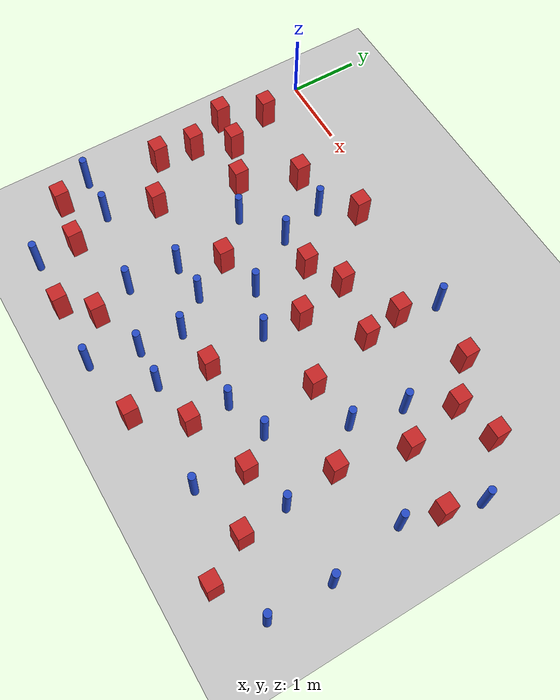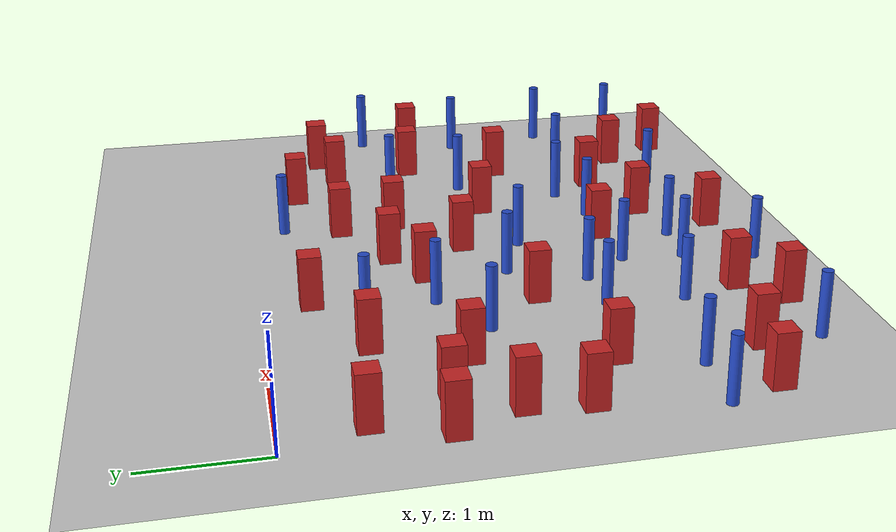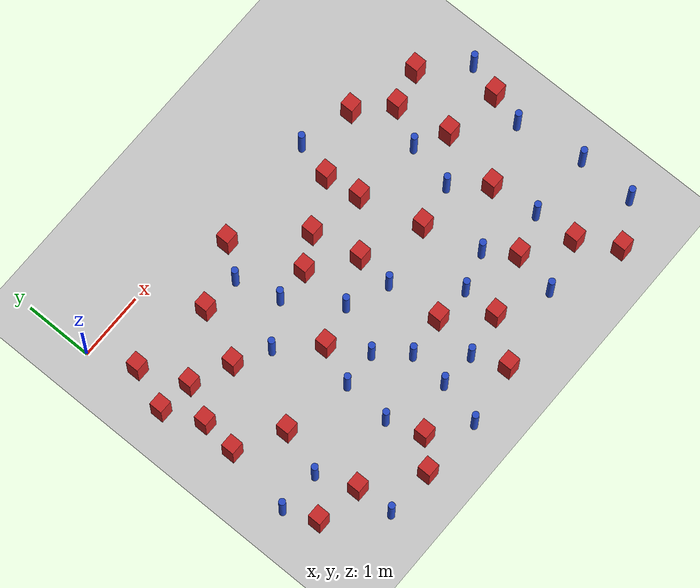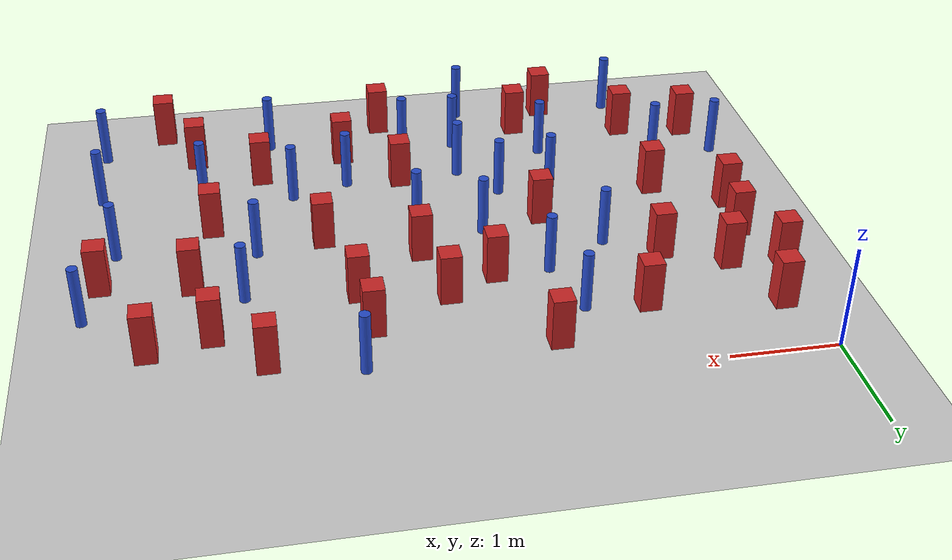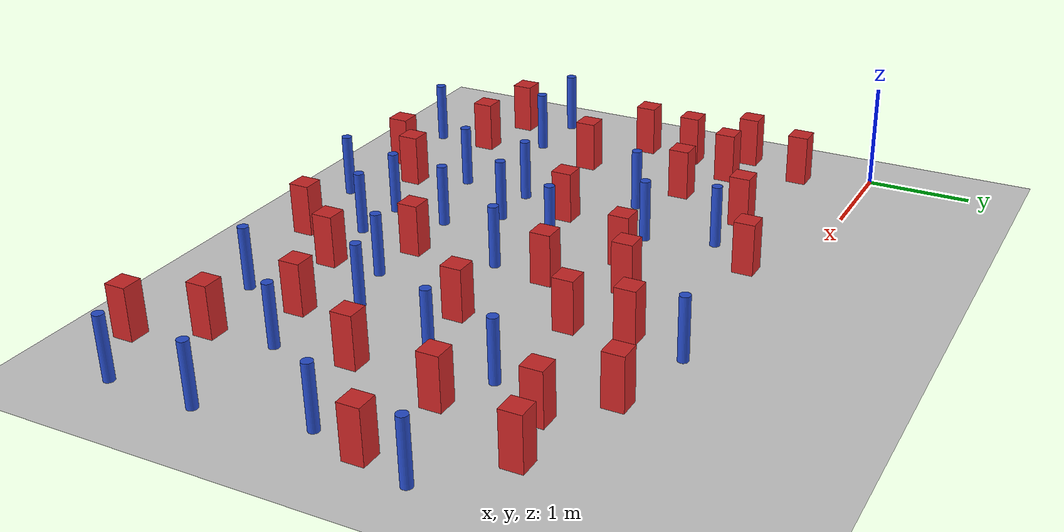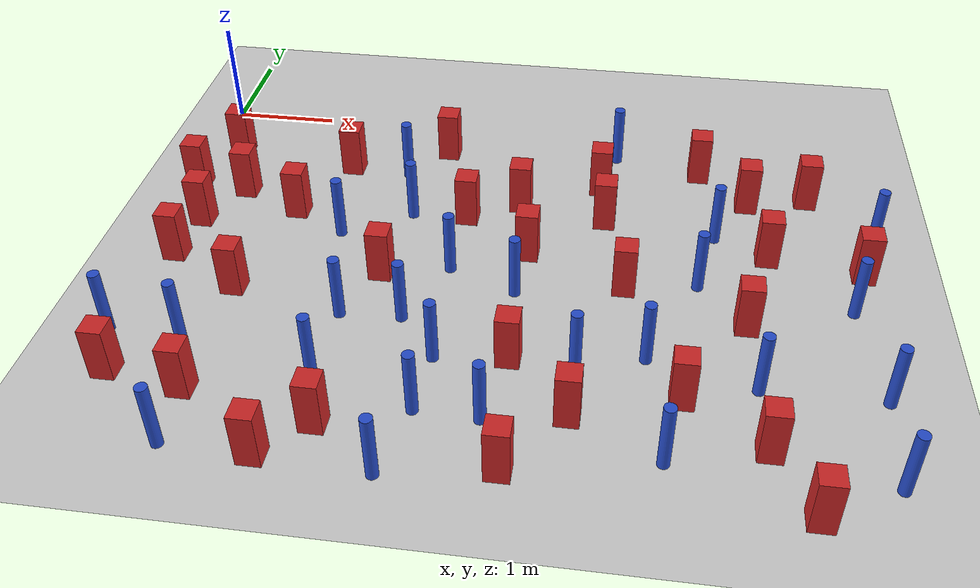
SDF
<sdf version="1.6">
 <world name="default">
  <model name="ground_plane">
   <static>1</static>
   <link name="link">
    <collision name="collision">
     <geometry><plane><normal>0 0 1</normal><size>100 100</size></plane></geometry>
     <surface><friction><ode><mu>100</mu><mu2>50</mu2></ode></friction></surface>
    </collision>
    <visual name="visual">
     <cast_shadows>0</cast_shadows>
     <geometry><plane><normal>0 0 1</normal><size>100 100</size></plane></geometry>
     <material>
      <ambient>1.0 1.0 1.0 1.0</ambient>
      <diffuse>0.8 0.8 0.8 1.0</diffuse>
      <specular>0.01 0.01 0.01 1.000000</specular>
     </material>
    </visual>
   </link>
  </model>
  <model name="pole_obstacle0">
   <static>true</static>
   <pose>3.24254973709 -4.00526755006 7.38925637345e-09 -8.47170692799e-08 1.24976764995e-08 -1.74513093021e-07</pose>
   <link name="link">
    <pose>0 0 0.3 0 -0 0</pose>
    <inertial>
     <mass>1</mass>
     <inertia><ixx>0.145833</ixx><ixy>0</ixy><ixz>0</ixz><iyy>0.145833</iyy><iyz>0</iyz><izz>0.125</izz></inertia>
    </inertial>
    <collision name="collision">
     <geometry><cylinder><radius>0.05</radius><length>.6</length></cylinder></geometry>
    </collision>
    <visual name="visual">
     <geometry><cylinder><radius>0.05</radius><length>.6</length></cylinder></geometry>
     <material>
      <script><name>Gazebo/Blue</name><uri>file://media/materials/scripts/gazebo.material</uri></script>
     </material>
    </visual>
   </link>
  </model>
  <model name="square_post_obstacle6">
   <static>true</static>
   <pose>2.73595648026 -1.51727002082 1.91545236811e-07 -7.35059704564e-06 1.12565212e-07 2.39332434364e-05</pose>
   <link name="link">
    <pose>0 0 0.25 0 -0 0</pose>
    <inertial>
     <mass>100</mass>
     <inertia>
      <ixx>0.166667</ixx>
      <ixy>0</ixy>
      <ixz>0</ixz>
      <iyy>0.166667</iyy>
      <iyz>0</iyz>
      <izz>0.166667</izz>
     </inertia>
    </inertial>
    <collision name="collision"><geometry><box><size>.2 .2 .5</size></box></geometry></collision>
    <visual name="visual">
     <geometry><box><size>.2 .2 .5</size></box></geometry>
     <material>
      <script><name>Gazebo/Red</name><uri>file://media/materials/scripts/gazebo.material</uri></script>
     </material>
    </visual>
   </link>
  </model>
  <model name="square_post_obstacle8">
   <static>true</static>
   <pose>0.0272128510297 -1.29698474354 1.91545236811e-07 -7.35059704564e-06 1.12565212e-07 2.39332434364e-05</pose>
   <link name="link">
    <pose>0 0 0.25 0 -0 0</pose>
    <inertial>
     <mass>100</mass>
     <inertia>
      <ixx>0.166667</ixx>
      <ixy>0</ixy>
      <ixz>0</ixz>
      <iyy>0.166667</iyy>
      <iyz>0</iyz>
      <izz>0.166667</izz>
     </inertia>
    </inertial>
    <collision name="collision"><geometry><box><size>.2 .2 .5</size></box></geometry></collision>
    <visual name="visual">
     <geometry><box><size>.2 .2 .5</size></box></geometry>
     <material>
      <script><name>Gazebo/Red</name><uri>file://media/materials/scripts/gazebo.material</uri></script>
     </material>
    </visual>
   </link>
  </model>
  <model name="square_post_obstacle22">
   <static>true</static>
   <pose>0.874387646557 -3.99899920464 1.91545236811e-07 -7.35059704564e-06 1.12565212e-07 2.39332434364e-05</pose>
   <link name="link">
    <pose>0 0 0.25 0 -0 0</pose>
    <inertial>
     <mass>100</mass>
     <inertia>
      <ixx>0.166667</ixx>
      <ixy>0</ixy>
      <ixz>0</ixz>
      <iyy>0.166667</iyy>
      <iyz>0</iyz>
      <izz>0.166667</izz>
     </inertia>
    </inertial>
    <collision name="collision"><geometry><box><size>.2 .2 .5</size></box></geometry></collision>
    <visual name="visual">
     <geometry><box><size>.2 .2 .5</size></box></geometry>
     <material>
      <script><name>Gazebo/Red</name><uri>file://media/materials/scripts/gazebo.material</uri></script>
     </material>
    </visual>
   </link>
  </model>
  <model name="pole_obstacle19">
   <static>true</static>
   <pose>2.70395476736 -2.27698614182 7.38925637345e-09 -8.47170692798e-08 1.24976764939e-08 -1.74513093025e-07</pose>
   <link name="link">
    <pose>0 0 0.3 0 -0 0</pose>
    <inertial>
     <mass>1</mass>
     <inertia><ixx>0.145833</ixx><ixy>0</ixy><ixz>0</ixz><iyy>0.145833</iyy><iyz>0</iyz><izz>0.125</izz></inertia>
    </inertial>
    <collision name="collision">
     <geometry><cylinder><radius>0.05</radius><length>.6</length></cylinder></geometry>
    </collision>
    <visual name="visual">
     <geometry><cylinder><radius>0.05</radius><length>.6</length></cylinder></geometry>
     <material>
      <script><name>Gazebo/Blue</name><uri>file://media/materials/scripts/gazebo.material</uri></script>
     </material>
    </visual>
   </link>
  </model>
  <model name="square_post_obstacle30">
   <static>true</static>
   <pose>2.1086569009 -2.41578867709 1.91545236811e-07 -7.35059704564e-06 1.12565212e-07 2.39332434364e-05</pose>
   <link name="link">
    <pose>0 0 0.25 0 -0 0</pose>
    <inertial>
     <mass>100</mass>
     <inertia>
      <ixx>0.166667</ixx>
      <ixy>0</ixy>
      <ixz>0</ixz>
      <iyy>0.166667</iyy>
      <iyz>0</iyz>
      <izz>0.166667</izz>
     </inertia>
    </inertial>
    <collision name="collision"><geometry><box><size>.2 .2 .5</size></box></geometry></collision>
    <visual name="visual">
     <geometry><box><size>.2 .2 .5</size></box></geometry>
     <material>
      <script><name>Gazebo/Red</name><uri>file://media/materials/scripts/gazebo.material</uri></script>
     </material>
    </visual>
   </link>
  </model>
  <model name="pole_obstacle20">
   <static>true</static>
   <pose>4.88348955475 -2.23669537517 7.38925637345e-09 -8.47170692798e-08 1.24976764937e-08 -1.74513093023e-07</pose>
   <link name="link">
    <pose>0 0 0.3 0 -0 0</pose>
    <inertial>
     <mass>1</mass>
     <inertia><ixx>0.145833</ixx><ixy>0</ixy><ixz>0</ixz><iyy>0.145833</iyy><iyz>0</iyz><izz>0.125</izz></inertia>
    </inertial>
    <collision name="collision">
     <geometry><cylinder><radius>0.05</radius><length>.6</length></cylinder></geometry>
    </collision>
    <visual name="visual">
     <geometry><cylinder><radius>0.05</radius><length>.6</length></cylinder></geometry>
     <material>
      <script><name>Gazebo/Blue</name><uri>file://media/materials/scripts/gazebo.material</uri></script>
     </material>
    </visual>
   </link>
  </model>
  <model name="pole_obstacle21">
   <static>true</static>
   <pose>6.19964836717 -2.40877965327 7.38925637345e-09 -8.47170692798e-08 1.24976764937e-08 -1.74513093023e-07</pose>
   <link name="link">
    <pose>0 0 0.3 0 -0 0</pose>
    <inertial>
     <mass>1</mass>
     <inertia><ixx>0.145833</ixx><ixy>0</ixy><ixz>0</ixz><iyy>0.145833</iyy><iyz>0</iyz><izz>0.125</izz></inertia>
    </inertial>
    <collision name="collision">
     <geometry><cylinder><radius>0.05</radius><length>.6</length></cylinder></geometry>
    </collision>
    <visual name="visual">
     <geometry><cylinder><radius>0.05</radius><length>.6</length></cylinder></geometry>
     <material>
      <script><name>Gazebo/Blue</name><uri>file://media/materials/scripts/gazebo.material</uri></script>
     </material>
    </visual>
   </link>
  </model>
  <model name="pole_obstacle39">
   <static>true</static>
   <pose>2.75730395072 -3.39801869928 7.38925637345e-09 -8.47170692798e-08 1.24976764939e-08 -1.74513093025e-07</pose>
   <link name="link">
    <pose>0 0 0.3 0 -0 0</pose>
    <inertial>
     <mass>1</mass>
     <inertia><ixx>0.145833</ixx><ixy>0</ixy><ixz>0</ixz><iyy>0.145833</iyy><iyz>0</iyz><izz>0.125</izz></inertia>
    </inertial>
    <collision name="collision">
     <geometry><cylinder><radius>0.05</radius><length>.6</length></cylinder></geometry>
    </collision>
    <visual name="visual">
     <geometry><cylinder><radius>0.05</radius><length>.6</length></cylinder></geometry>
     <material>
      <script><name>Gazebo/Blue</name><uri>file://media/materials/scripts/gazebo.material</uri></script>
     </material>
    </visual>
   </link>
  </model>
  <model name="pole_obstacle44">
   <static>true</static>
   <pose>1.87567391047 -2.98643579792 7.38925637345e-09 -8.47170692799e-08 1.24976765053e-08 -1.74513093017e-07</pose>
   <link name="link">
    <pose>0 0 0.3 0 -0 0</pose>
    <inertial>
     <mass>1</mass>
     <inertia><ixx>0.145833</ixx><ixy>0</ixy><ixz>0</ixz><iyy>0.145833</iyy><iyz>0</iyz><izz>0.125</izz></inertia>
    </inertial>
    <collision name="collision">
     <geometry><cylinder><radius>0.05</radius><length>.6</length></cylinder></geometry>
    </collision>
    <visual name="visual">
     <geometry><cylinder><radius>0.05</radius><length>.6</length></cylinder></geometry>
     <material>
      <script><name>Gazebo/Blue</name><uri>file://media/materials/scripts/gazebo.material</uri></script>
     </material>
    </visual>
   </link>
  </model>
  <model name="square_post_obstacle48">
   <static>true</static>
   <pose>0.878847275502 -2.7718437334 1.91545236811e-07 -7.35059704564e-06 1.12565212e-07 2.39332434364e-05</pose>
   <link name="link">
    <pose>0 0 0.25 0 -0 0</pose>
    <inertial>
     <mass>100</mass>
     <inertia>
      <ixx>0.166667</ixx>
      <ixy>0</ixy>
      <ixz>0</ixz>
      <iyy>0.166667</iyy>
      <iyz>0</iyz>
      <izz>0.166667</izz>
     </inertia>
    </inertial>
    <collision name="collision"><geometry><box><size>.2 .2 .5</size></box></geometry></collision>
    <visual name="visual">
     <geometry><box><size>.2 .2 .5</size></box></geometry>
     <material>
      <script><name>Gazebo/Red</name><uri>file://media/materials/scripts/gazebo.material</uri></script>
     </material>
    </visual>
   </link>
  </model>
  <model name="pole_obstacle52">
   <static>true</static>
   <pose>5.03634160916 -1.53633762003 7.38925637345e-09 -8.471706928e-08 1.24976765134e-08 -1.74513093015e-07</pose>
   <link name="link">
    <pose>0 0 0.3 0 -0 0</pose>
    <inertial>
     <mass>1</mass>
     <inertia><ixx>0.145833</ixx><ixy>0</ixy><ixz>0</ixz><iyy>0.145833</iyy><iyz>0</iyz><izz>0.125</izz></inertia>
    </inertial>
    <collision name="collision">
     <geometry><cylinder><radius>0.05</radius><length>.6</length></cylinder></geometry>
    </collision>
    <visual name="visual">
     <geometry><cylinder><radius>0.05</radius><length>.6</length></cylinder></geometry>
     <material>
      <script><name>Gazebo/Blue</name><uri>file://media/materials/scripts/gazebo.material</uri></script>
     </material>
    </visual>
   </link>
  </model>
  <model name="pole_obstacle54">
   <static>true</static>
   <pose>2.03884656999 -0.891241037738 7.38925637345e-09 -8.471706928e-08 1.24976765139e-08 -1.74513093014e-07</pose>
   <link name="link">
    <pose>0 0 0.3 0 -0 0</pose>
    <inertial>
     <mass>1</mass>
     <inertia><ixx>0.145833</ixx><ixy>0</ixy><ixz>0</ixz><iyy>0.145833</iyy><iyz>0</iyz><izz>0.125</izz></inertia>
    </inertial>
    <collision name="collision">
     <geometry><cylinder><radius>0.05</radius><length>.6</length></cylinder></geometry>
    </collision>
    <visual name="visual">
     <geometry><cylinder><radius>0.05</radius><length>.6</length></cylinder></geometry>
     <material>
      <script><name>Gazebo/Blue</name><uri>file://media/materials/scripts/gazebo.material</uri></script>
     </material>
    </visual>
   </link>
  </model>
  <model name="pole_obstacle56">
   <static>true</static>
   <pose>1.60706114903 -1.89651465857 7.38925637345e-09 -8.471706928e-08 1.24976765079e-08 -1.74513093017e-07</pose>
   <link name="link">
    <pose>0 0 0.3 0 -0 0</pose>
    <inertial>
     <mass>1</mass>
     <inertia><ixx>0.145833</ixx><ixy>0</ixy><ixz>0</ixz><iyy>0.145833</iyy><iyz>0</iyz><izz>0.125</izz></inertia>
    </inertial>
    <collision name="collision">
     <geometry><cylinder><radius>0.05</radius><length>.6</length></cylinder></geometry>
    </collision>
    <visual name="visual">
     <geometry><cylinder><radius>0.05</radius><length>.6</length></cylinder></geometry>
     <material>
      <script><name>Gazebo/Blue</name><uri>file://media/materials/scripts/gazebo.material</uri></script>
     </material>
    </visual>
   </link>
  </model>
  <model name="square_post_obstacle62">
   <static>true</static>
   <pose>5.40421395321 -4.04120598837 1.91545236811e-07 -7.35059704564e-06 1.12565212e-07 2.39332434364e-05</pose>
   <link name="link">
    <pose>0 0 0.25 0 -0 0</pose>
    <inertial>
     <mass>100</mass>
     <inertia>
      <ixx>0.166667</ixx>
      <ixy>0</ixy>
      <ixz>0</ixz>
      <iyy>0.166667</iyy>
      <iyz>0</iyz>
      <izz>0.166667</izz>
     </inertia>
    </inertial>
    <collision name="collision"><geometry><box><size>.2 .2 .5</size></box></geometry></collision>
    <visual name="visual">
     <geometry><box><size>.2 .2 .5</size></box></geometry>
     <material>
      <script><name>Gazebo/Red</name><uri>file://media/materials/scripts/gazebo.material</uri></script>
     </material>
    </visual>
   </link>
  </model>
  <model name="square_post_obstacle63">
   <static>true</static>
   <pose>3.94570017483 -0.887650829043 1.91545236811e-07 -7.35059704564e-06 1.12565212e-07 2.39332434364e-05</pose>
   <link name="link">
    <pose>0 0 0.25 0 -0 0</pose>
    <inertial>
     <mass>100</mass>
     <inertia>
      <ixx>0.166667</ixx>
      <ixy>0</ixy>
      <ixz>0</ixz>
      <iyy>0.166667</iyy>
      <iyz>0</iyz>
      <izz>0.166667</izz>
     </inertia>
    </inertial>
    <collision name="collision"><geometry><box><size>.2 .2 .5</size></box></geometry></collision>
    <visual name="visual">
     <geometry><box><size>.2 .2 .5</size></box></geometry>
     <material>
      <script><name>Gazebo/Red</name><uri>file://media/materials/scripts/gazebo.material</uri></script>
     </material>
    </visual>
   </link>
  </model>
  <model name="pole_obstacle62">
   <static>true</static>
   <pose>6.33848067655 -4.26451687832 7.38925637345e-09 -8.47170692796e-08 1.24976764786e-08 -1.74513093032e-07</pose>
   <link name="link">
    <pose>0 0 0.3 0 -0 0</pose>
    <inertial>
     <mass>1</mass>
     <inertia><ixx>0.145833</ixx><ixy>0</ixy><ixz>0</ixz><iyy>0.145833</iyy><iyz>0</iyz><izz>0.125</izz></inertia>
    </inertial>
    <collision name="collision">
     <geometry><cylinder><radius>0.05</radius><length>.6</length></cylinder></geometry>
    </collision>
    <visual name="visual">
     <geometry><cylinder><radius>0.05</radius><length>.6</length></cylinder></geometry>
     <material>
      <script><name>Gazebo/Blue</name><uri>file://media/materials/scripts/gazebo.material</uri></script>
     </material>
    </visual>
   </link>
  </model>
  <model name="square_post_obstacle64">
   <static>true</static>
   <pose>0.206429018949 -3.88384669726 1.91545236811e-07 -7.35059704564e-06 1.12565212e-07 2.39332434364e-05</pose>
   <link name="link">
    <pose>0 0 0.25 0 -0 0</pose>
    <inertial>
     <mass>100</mass>
     <inertia>
      <ixx>0.166667</ixx>
      <ixy>0</ixy>
      <ixz>0</ixz>
      <iyy>0.166667</iyy>
      <iyz>0</iyz>
      <izz>0.166667</izz>
     </inertia>
    </inertial>
    <collision name="collision"><geometry><box><size>.2 .2 .5</size></box></geometry></collision>
    <visual name="visual">
     <geometry><box><size>.2 .2 .5</size></box></geometry>
     <material>
      <script><name>Gazebo/Red</name><uri>file://media/materials/scripts/gazebo.material</uri></script>
     </material>
    </visual>
   </link>
  </model>
  <model name="square_post_obstacle65">
   <static>true</static>
   <pose>4.89111587695 -0.541783912844 1.91545236811e-07 -7.35059704564e-06 1.12565212e-07 2.39332434364e-05</pose>
   <link name="link">
    <pose>0 0 0.25 0 -0 0</pose>
    <inertial>
     <mass>100</mass>
     <inertia>
      <ixx>0.166667</ixx>
      <ixy>0</ixy>
      <ixz>0</ixz>
      <iyy>0.166667</iyy>
      <iyz>0</iyz>
      <izz>0.166667</izz>
     </inertia>
    </inertial>
    <collision name="collision"><geometry><box><size>.2 .2 .5</size></box></geometry></collision>
    <visual name="visual">
     <geometry><box><size>.2 .2 .5</size></box></geometry>
     <material>
      <script><name>Gazebo/Red</name><uri>file://media/materials/scripts/gazebo.material</uri></script>
     </material>
    </visual>
   </link>
  </model>
  <model name="pole_obstacle69">
   <static>true</static>
   <pose>4.4672129277 -3.19248860233 7.38925637345e-09 -8.47170692798e-08 1.24976764937e-08 -1.74513093023e-07</pose>
   <link name="link">
    <pose>0 0 0.3 0 -0 0</pose>
    <inertial>
     <mass>1</mass>
     <inertia><ixx>0.145833</ixx><ixy>0</ixy><ixz>0</ixz><iyy>0.145833</iyy><iyz>0</iyz><izz>0.125</izz></inertia>
    </inertial>
    <collision name="collision">
     <geometry><cylinder><radius>0.05</radius><length>.6</length></cylinder></geometry>
    </collision>
    <visual name="visual">
     <geometry><cylinder><radius>0.05</radius><length>.6</length></cylinder></geometry>
     <material>
      <script><name>Gazebo/Blue</name><uri>file://media/materials/scripts/gazebo.material</uri></script>
     </material>
    </visual>
   </link>
  </model>
  <model name="pole_obstacle70">
   <static>true</static>
   <pose>0.0141509482081 -3.4196730437 7.38925637345e-09 -8.471706928e-08 1.24976765144e-08 -1.74513093012e-07</pose>
   <link name="link">
    <pose>0 0 0.3 0 -0 0</pose>
    <inertial>
     <mass>1</mass>
     <inertia><ixx>0.145833</ixx><ixy>0</ixy><ixz>0</ixz><iyy>0.145833</iyy><iyz>0</iyz><izz>0.125</izz></inertia>
    </inertial>
    <collision name="collision">
     <geometry><cylinder><radius>0.05</radius><length>.6</length></cylinder></geometry>
    </collision>
    <visual name="visual">
     <geometry><cylinder><radius>0.05</radius><length>.6</length></cylinder></geometry>
     <material>
      <script><name>Gazebo/Blue</name><uri>file://media/materials/scripts/gazebo.material</uri></script>
     </material>
    </visual>
   </link>
  </model>
  <model name="pole_obstacle93">
   <static>true</static>
   <pose>2.71034860216 -3.97723738023 7.38925637345e-09 -8.47170692797e-08 1.24976764881e-08 -1.74513093029e-07</pose>
   <link name="link">
    <pose>0 0 0.3 0 -0 0</pose>
    <inertial>
     <mass>1</mass>
     <inertia><ixx>0.145833</ixx><ixy>0</ixy><ixz>0</ixz><iyy>0.145833</iyy><iyz>0</iyz><izz>0.125</izz></inertia>
    </inertial>
    <collision name="collision">
     <geometry><cylinder><radius>0.05</radius><length>.6</length></cylinder></geometry>
    </collision>
    <visual name="visual">
     <geometry><cylinder><radius>0.05</radius><length>.6</length></cylinder></geometry>
     <material>
      <script><name>Gazebo/Blue</name><uri>file://media/materials/scripts/gazebo.material</uri></script>
     </material>
    </visual>
   </link>
  </model>
  <model name="pole_obstacle101">
   <static>true</static>
   <pose>2.21587981938 -1.53253070307 7.38925637345e-09 -8.471706928e-08 1.24976765152e-08 -1.74513093012e-07</pose>
   <link name="link">
    <pose>0 0 0.3 0 -0 0</pose>
    <inertial>
     <mass>1</mass>
     <inertia><ixx>0.145833</ixx><ixy>0</ixy><ixz>0</ixz><iyy>0.145833</iyy><iyz>0</iyz><izz>0.125</izz></inertia>
    </inertial>
    <collision name="collision">
     <geometry><cylinder><radius>0.05</radius><length>.6</length></cylinder></geometry>
    </collision>
    <visual name="visual">
     <geometry><cylinder><radius>0.05</radius><length>.6</length></cylinder></geometry>
     <material>
      <script><name>Gazebo/Blue</name><uri>file://media/materials/scripts/gazebo.material</uri></script>
     </material>
    </visual>
   </link>
  </model>
  <model name="square_post_obstacle93">
   <static>true</static>
   <pose>6.33174517061 -1.90429039621 1.91545236811e-07 -7.35059704564e-06 1.12565212e-07 2.39332434364e-05</pose>
   <link name="link">
    <pose>0 0 0.25 0 -0 0</pose>
    <inertial>
     <mass>100</mass>
     <inertia>
      <ixx>0.166667</ixx>
      <ixy>0</ixy>
      <ixz>0</ixz>
      <iyy>0.166667</iyy>
      <iyz>0</iyz>
      <izz>0.166667</izz>
     </inertia>
    </inertial>
    <collision name="collision"><geometry><box><size>.2 .2 .5</size></box></geometry></collision>
    <visual name="visual">
     <geometry><box><size>.2 .2 .5</size></box></geometry>
     <material>
      <script><name>Gazebo/Red</name><uri>file://media/materials/scripts/gazebo.material</uri></script>
     </material>
    </visual>
   </link>
  </model>
  <model name="square_post_obstacle101">
   <static>true</static>
   <pose>4.01740914912 -1.41705294867 1.91545236811e-07 -7.35059704564e-06 1.12565212e-07 2.39332434364e-05</pose>
   <link name="link">
    <pose>0 0 0.25 0 -0 0</pose>
    <inertial>
     <mass>100</mass>
     <inertia>
      <ixx>0.166667</ixx>
      <ixy>0</ixy>
      <ixz>0</ixz>
      <iyy>0.166667</iyy>
      <iyz>0</iyz>
      <izz>0.166667</izz>
     </inertia>
    </inertial>
    <collision name="collision"><geometry><box><size>.2 .2 .5</size></box></geometry></collision>
    <visual name="visual">
     <geometry><box><size>.2 .2 .5</size></box></geometry>
     <material>
      <script><name>Gazebo/Red</name><uri>file://media/materials/scripts/gazebo.material</uri></script>
     </material>
    </visual>
   </link>
  </model>
  <model name="pole_obstacle116">
   <static>true</static>
   <pose>5.35657180404 -3.42184077314 7.38925637345e-09 -8.47170692798e-08 1.24976764937e-08 -1.74513093023e-07</pose>
   <link name="link">
    <pose>0 0 0.3 0 -0 0</pose>
    <inertial>
     <mass>1</mass>
     <inertia><ixx>0.145833</ixx><ixy>0</ixy><ixz>0</ixz><iyy>0.145833</iyy><iyz>0</iyz><izz>0.125</izz></inertia>
    </inertial>
    <collision name="collision">
     <geometry><cylinder><radius>0.05</radius><length>.6</length></cylinder></geometry>
    </collision>
    <visual name="visual">
     <geometry><cylinder><radius>0.05</radius><length>.6</length></cylinder></geometry>
     <material>
      <script><name>Gazebo/Blue</name><uri>file://media/materials/scripts/gazebo.material</uri></script>
     </material>
    </visual>
   </link>
  </model>
  <model name="square_post_obstacle105">
   <static>true</static>
   <pose>1.47335613247 -0.848220719909 1.91545236811e-07 -7.35059704564e-06 1.12565212e-07 2.39332434364e-05</pose>
   <link name="link">
    <pose>0 0 0.25 0 -0 0</pose>
    <inertial>
     <mass>100</mass>
     <inertia>
      <ixx>0.166667</ixx>
      <ixy>0</ixy>
      <ixz>0</ixz>
      <iyy>0.166667</iyy>
      <iyz>0</iyz>
      <izz>0.166667</izz>
     </inertia>
    </inertial>
    <collision name="collision"><geometry><box><size>.2 .2 .5</size></box></geometry></collision>
    <visual name="visual">
     <geometry><box><size>.2 .2 .5</size></box></geometry>
     <material>
      <script><name>Gazebo/Red</name><uri>file://media/materials/scripts/gazebo.material</uri></script>
     </material>
    </visual>
   </link>
  </model>
  <model name="square_post_obstacle106">
   <static>true</static>
   <pose>4.7581761479 -3.60508708522 1.91545236811e-07 -7.35059704564e-06 1.12565212e-07 2.39332434364e-05</pose>
   <link name="link">
    <pose>0 0 0.25 0 -0 0</pose>
    <inertial>
     <mass>100</mass>
     <inertia>
      <ixx>0.166667</ixx>
      <ixy>0</ixy>
      <ixz>0</ixz>
      <iyy>0.166667</iyy>
      <iyz>0</iyz>
      <izz>0.166667</izz>
     </inertia>
    </inertial>
    <collision name="collision"><geometry><box><size>.2 .2 .5</size></box></geometry></collision>
    <visual name="visual">
     <geometry><box><size>.2 .2 .5</size></box></geometry>
     <material>
      <script><name>Gazebo/Red</name><uri>file://media/materials/scripts/gazebo.material</uri></script>
     </material>
    </visual>
   </link>
  </model>
  <model name="pole_obstacle126">
   <static>true</static>
   <pose>6.47528515559 -1.41646367475 7.38925637345e-09 -8.471706928e-08 1.24976765134e-08 -1.74513093015e-07</pose>
   <link name="link">
    <pose>0 0 0.3 0 -0 0</pose>
    <inertial>
     <mass>1</mass>
     <inertia><ixx>0.145833</ixx><ixy>0</ixy><ixz>0</ixz><iyy>0.145833</iyy><iyz>0</iyz><izz>0.125</izz></inertia>
    </inertial>
    <collision name="collision">
     <geometry><cylinder><radius>0.05</radius><length>.6</length></cylinder></geometry>
    </collision>
    <visual name="visual">
     <geometry><cylinder><radius>0.05</radius><length>.6</length></cylinder></geometry>
     <material>
      <script><name>Gazebo/Blue</name><uri>file://media/materials/scripts/gazebo.material</uri></script>
     </material>
    </visual>
   </link>
  </model>
  <model name="pole_obstacle127">
   <static>true</static>
   <pose>6.35765908254 -3.41911189958 7.38925637345e-09 -8.47170692798e-08 1.24976764937e-08 -1.74513093023e-07</pose>
   <link name="link">
    <pose>0 0 0.3 0 -0 0</pose>
    <inertial>
     <mass>1</mass>
     <inertia><ixx>0.145833</ixx><ixy>0</ixy><ixz>0</ixz><iyy>0.145833</iyy><iyz>0</iyz><izz>0.125</izz></inertia>
    </inertial>
    <collision name="collision">
     <geometry><cylinder><radius>0.05</radius><length>.6</length></cylinder></geometry>
    </collision>
    <visual name="visual">
     <geometry><cylinder><radius>0.05</radius><length>.6</length></cylinder></geometry>
     <material>
      <script><name>Gazebo/Blue</name><uri>file://media/materials/scripts/gazebo.material</uri></script>
     </material>
    </visual>
   </link>
  </model>
  <model name="pole_obstacle138">
   <static>true</static>
   <pose>2.40807573935 -2.96335239766 7.38925637345e-09 -8.47170692798e-08 1.24976764939e-08 -1.74513093025e-07</pose>
   <link name="link">
    <pose>0 0 0.3 0 -0 0</pose>
    <inertial>
     <mass>1</mass>
     <inertia><ixx>0.145833</ixx><ixy>0</ixy><ixz>0</ixz><iyy>0.145833</iyy><iyz>0</iyz><izz>0.125</izz></inertia>
    </inertial>
    <collision name="collision">
     <geometry><cylinder><radius>0.05</radius><length>.6</length></cylinder></geometry>
    </collision>
    <visual name="visual">
     <geometry><cylinder><radius>0.05</radius><length>.6</length></cylinder></geometry>
     <material>
      <script><name>Gazebo/Blue</name><uri>file://media/materials/scripts/gazebo.material</uri></script>
     </material>
    </visual>
   </link>
  </model>
  <model name="square_post_obstacle121">
   <static>true</static>
   <pose>0.206380431137 -2.39073484995 1.91545236811e-07 -7.35059704564e-06 1.12565212e-07 2.39332434364e-05</pose>
   <link name="link">
    <pose>0 0 0.25 0 -0 0</pose>
    <inertial>
     <mass>100</mass>
     <inertia>
      <ixx>0.166667</ixx>
      <ixy>0</ixy>
      <ixz>0</ixz>
      <iyy>0.166667</iyy>
      <iyz>0</iyz>
      <izz>0.166667</izz>
     </inertia>
    </inertial>
    <collision name="collision"><geometry><box><size>.2 .2 .5</size></box></geometry></collision>
    <visual name="visual">
     <geometry><box><size>.2 .2 .5</size></box></geometry>
     <material>
      <script><name>Gazebo/Red</name><uri>file://media/materials/scripts/gazebo.material</uri></script>
     </material>
    </visual>
   </link>
  </model>
  <model name="square_post_obstacle122">
   <static>true</static>
   <pose>5.71882571718 -4.60977531678 1.91545236811e-07 -7.35059704564e-06 1.12565212e-07 2.39332434364e-05</pose>
   <link name="link">
    <pose>0 0 0.25 0 -0 0</pose>
    <inertial>
     <mass>100</mass>
     <inertia>
      <ixx>0.166667</ixx>
      <ixy>0</ixy>
      <ixz>0</ixz>
      <iyy>0.166667</iyy>
      <iyz>0</iyz>
      <izz>0.166667</izz>
     </inertia>
    </inertial>
    <collision name="collision"><geometry><box><size>.2 .2 .5</size></box></geometry></collision>
    <visual name="visual">
     <geometry><box><size>.2 .2 .5</size></box></geometry>
     <material>
      <script><name>Gazebo/Red</name><uri>file://media/materials/scripts/gazebo.material</uri></script>
     </material>
    </visual>
   </link>
  </model>
  <model name="square_post_obstacle125">
   <static>true</static>
   <pose>5.49786997544 -1.779087036 1.91545236811e-07 -7.35059704564e-06 1.12565212e-07 2.39332434364e-05</pose>
   <link name="link">
    <pose>0 0 0.25 0 -0 0</pose>
    <inertial>
     <mass>100</mass>
     <inertia>
      <ixx>0.166667</ixx>
      <ixy>0</ixy>
      <ixz>0</ixz>
      <iyy>0.166667</iyy>
      <iyz>0</iyz>
      <izz>0.166667</izz>
     </inertia>
    </inertial>
    <collision name="collision"><geometry><box><size>.2 .2 .5</size></box></geometry></collision>
    <visual name="visual">
     <geometry><box><size>.2 .2 .5</size></box></geometry>
     <material>
      <script><name>Gazebo/Red</name><uri>file://media/materials/scripts/gazebo.material</uri></script>
     </material>
    </visual>
   </link>
  </model>
  <model name="pole_obstacle140">
   <static>true</static>
   <pose>4.07713688949 -0.349056281541 7.38925637345e-09 -8.47170692798e-08 1.24976765003e-08 -1.7451309302e-07</pose>
   <link name="link">
    <pose>0 0 0.3 0 -0 0</pose>
    <inertial>
     <mass>1</mass>
     <inertia><ixx>0.145833</ixx><ixy>0</ixy><ixz>0</ixz><iyy>0.145833</iyy><iyz>0</iyz><izz>0.125</izz></inertia>
    </inertial>
    <collision name="collision">
     <geometry><cylinder><radius>0.05</radius><length>.6</length></cylinder></geometry>
    </collision>
    <visual name="visual">
     <geometry><cylinder><radius>0.05</radius><length>.6</length></cylinder></geometry>
     <material>
      <script><name>Gazebo/Blue</name><uri>file://media/materials/scripts/gazebo.material</uri></script>
     </material>
    </visual>
   </link>
  </model>
  <model name="square_post_obstacle135">
   <static>true</static>
   <pose>3.20863797527 -1.25914358259 1.91545236811e-07 -7.35059704564e-06 1.12565212e-07 2.39332434364e-05</pose>
   <link name="link">
    <pose>0 0 0.25 0 -0 0</pose>
    <inertial>
     <mass>100</mass>
     <inertia>
      <ixx>0.166667</ixx>
      <ixy>0</ixy>
      <ixz>0</ixz>
      <iyy>0.166667</iyy>
      <iyz>0</iyz>
      <izz>0.166667</izz>
     </inertia>
    </inertial>
    <collision name="collision"><geometry><box><size>.2 .2 .5</size></box></geometry></collision>
    <visual name="visual">
     <geometry><box><size>.2 .2 .5</size></box></geometry>
     <material>
      <script><name>Gazebo/Red</name><uri>file://media/materials/scripts/gazebo.material</uri></script>
     </material>
    </visual>
   </link>
  </model>
  <model name="square_post_obstacle137">
   <static>true</static>
   <pose>5.90531736726 -0.84798161136 1.91545236811e-07 -7.35059704564e-06 1.12565212e-07 2.39332434364e-05</pose>
   <link name="link">
    <pose>0 0 0.25 0 -0 0</pose>
    <inertial>
     <mass>100</mass>
     <inertia>
      <ixx>0.166667</ixx>
      <ixy>0</ixy>
      <ixz>0</ixz>
      <iyy>0.166667</iyy>
      <iyz>0</iyz>
      <izz>0.166667</izz>
     </inertia>
    </inertial>
    <collision name="collision"><geometry><box><size>.2 .2 .5</size></box></geometry></collision>
    <visual name="visual">
     <geometry><box><size>.2 .2 .5</size></box></geometry>
     <material>
      <script><name>Gazebo/Red</name><uri>file://media/materials/scripts/gazebo.material</uri></script>
     </material>
    </visual>
   </link>
  </model>
  <model name="pole_obstacle152">
   <static>true</static>
   <pose>0.896973216145 -4.55494474254 7.38925637345e-09 -8.471706928e-08 1.24976765086e-08 -1.74513093015e-07</pose>
   <link name="link">
    <pose>0 0 0.3 0 -0 0</pose>
    <inertial>
     <mass>1</mass>
     <inertia><ixx>0.145833</ixx><ixy>0</ixy><ixz>0</ixz><iyy>0.145833</iyy><iyz>0</iyz><izz>0.125</izz></inertia>
    </inertial>
    <collision name="collision">
     <geometry><cylinder><radius>0.05</radius><length>.6</length></cylinder></geometry>
    </collision>
    <visual name="visual">
     <geometry><cylinder><radius>0.05</radius><length>.6</length></cylinder></geometry>
     <material>
      <script><name>Gazebo/Blue</name><uri>file://media/materials/scripts/gazebo.material</uri></script>
     </material>
    </visual>
   </link>
  </model>
  <model name="square_post_obstacle144">
   <static>true</static>
   <pose>3.44857204831 -4.4805921763 1.91545236811e-07 -7.35059704564e-06 1.12565212e-07 2.39332434364e-05</pose>
   <link name="link">
    <pose>0 0 0.25 0 -0 0</pose>
    <inertial>
     <mass>100</mass>
     <inertia>
      <ixx>0.166667</ixx>
      <ixy>0</ixy>
      <ixz>0</ixz>
      <iyy>0.166667</iyy>
      <iyz>0</iyz>
      <izz>0.166667</izz>
     </inertia>
    </inertial>
    <collision name="collision"><geometry><box><size>.2 .2 .5</size></box></geometry></collision>
    <visual name="visual">
     <geometry><box><size>.2 .2 .5</size></box></geometry>
     <material>
      <script><name>Gazebo/Red</name><uri>file://media/materials/scripts/gazebo.material</uri></script>
     </material>
    </visual>
   </link>
  </model>
  <model name="square_post_obstacle146">
   <static>true</static>
   <pose>4.245506668 -2.34391548868 1.91545236811e-07 -7.35059704564e-06 1.12565212e-07 2.39332434364e-05</pose>
   <link name="link">
    <pose>0 0 0.25 0 -0 0</pose>
    <inertial>
     <mass>100</mass>
     <inertia>
      <ixx>0.166667</ixx>
      <ixy>0</ixy>
      <ixz>0</ixz>
      <iyy>0.166667</iyy>
      <iyz>0</iyz>
      <izz>0.166667</izz>
     </inertia>
    </inertial>
    <collision name="collision"><geometry><box><size>.2 .2 .5</size></box></geometry></collision>
    <visual name="visual">
     <geometry><box><size>.2 .2 .5</size></box></geometry>
     <material>
      <script><name>Gazebo/Red</name><uri>file://media/materials/scripts/gazebo.material</uri></script>
     </material>
    </visual>
   </link>
  </model>
  <model name="square_post_obstacle148">
   <static>true</static>
   <pose>2.37969625138 -0.457766293281 1.91545236811e-07 -7.35059704564e-06 1.12565212e-07 2.39332434364e-05</pose>
   <link name="link">
    <pose>0 0 0.25 0 -0 0</pose>
    <inertial>
     <mass>100</mass>
     <inertia>
      <ixx>0.166667</ixx>
      <ixy>0</ixy>
      <ixz>0</ixz>
      <iyy>0.166667</iyy>
      <iyz>0</iyz>
      <izz>0.166667</izz>
     </inertia>
    </inertial>
    <collision name="collision"><geometry><box><size>.2 .2 .5</size></box></geometry></collision>
    <visual name="visual">
     <geometry><box><size>.2 .2 .5</size></box></geometry>
     <material>
      <script><name>Gazebo/Red</name><uri>file://media/materials/scripts/gazebo.material</uri></script>
     </material>
    </visual>
   </link>
  </model>
  <model name="square_post_obstacle151">
   <static>true</static>
   <pose>5.3415915454 -0.988055581309 1.91545236811e-07 -7.35059704564e-06 1.12565212e-07 2.39332434364e-05</pose>
   <link name="link">
    <pose>0 0 0.25 0 -0 0</pose>
    <inertial>
     <mass>100</mass>
     <inertia>
      <ixx>0.166667</ixx>
      <ixy>0</ixy>
      <ixz>0</ixz>
      <iyy>0.166667</iyy>
      <iyz>0</iyz>
      <izz>0.166667</izz>
     </inertia>
    </inertial>
    <collision name="collision"><geometry><box><size>.2 .2 .5</size></box></geometry></collision>
    <visual name="visual">
     <geometry><box><size>.2 .2 .5</size></box></geometry>
     <material>
      <script><name>Gazebo/Red</name><uri>file://media/materials/scripts/gazebo.material</uri></script>
     </material>
    </visual>
   </link>
  </model>
  <model name="pole_obstacle160">
   <static>true</static>
   <pose>0.650327098588 -3.44520517736 7.38925637345e-09 -8.47170692799e-08 1.2497676509e-08 -1.74513093016e-07</pose>
   <link name="link">
    <pose>0 0 0.3 0 -0 0</pose>
    <inertial>
     <mass>1</mass>
     <inertia><ixx>0.145833</ixx><ixy>0</ixy><ixz>0</ixz><iyy>0.145833</iyy><iyz>0</iyz><izz>0.125</izz></inertia>
    </inertial>
    <collision name="collision">
     <geometry><cylinder><radius>0.05</radius><length>.6</length></cylinder></geometry>
    </collision>
    <visual name="visual">
     <geometry><cylinder><radius>0.05</radius><length>.6</length></cylinder></geometry>
     <material>
      <script><name>Gazebo/Blue</name><uri>file://media/materials/scripts/gazebo.material</uri></script>
     </material>
    </visual>
   </link>
  </model>
  <model name="pole_obstacle174">
   <static>true</static>
   <pose>2.55211587463 -4.62542567429 7.38925637345e-09 -8.47170692798e-08 1.24976765033e-08 -1.74513093019e-07</pose>
   <link name="link">
    <pose>0 0 0.3 0 -0 0</pose>
    <inertial>
     <mass>1</mass>
     <inertia><ixx>0.145833</ixx><ixy>0</ixy><ixz>0</ixz><iyy>0.145833</iyy><iyz>0</iyz><izz>0.125</izz></inertia>
    </inertial>
    <collision name="collision">
     <geometry><cylinder><radius>0.05</radius><length>.6</length></cylinder></geometry>
    </collision>
    <visual name="visual">
     <geometry><cylinder><radius>0.05</radius><length>.6</length></cylinder></geometry>
     <material>
      <script><name>Gazebo/Blue</name><uri>file://media/materials/scripts/gazebo.material</uri></script>
     </material>
    </visual>
   </link>
  </model>
  <model name="square_post_obstacle164">
   <static>true</static>
   <pose>0.267541361224 -1.86552107756 1.91545236811e-07 -7.35059704564e-06 1.12565212e-07 2.39332434364e-05</pose>
   <link name="link">
    <pose>0 0 0.25 0 -0 0</pose>
    <inertial>
     <mass>100</mass>
     <inertia>
      <ixx>0.166667</ixx>
      <ixy>0</ixy>
      <ixz>0</ixz>
      <iyy>0.166667</iyy>
      <iyz>0</iyz>
      <izz>0.166667</izz>
     </inertia>
    </inertial>
    <collision name="collision"><geometry><box><size>.2 .2 .5</size></box></geometry></collision>
    <visual name="visual">
     <geometry><box><size>.2 .2 .5</size></box></geometry>
     <material>
      <script><name>Gazebo/Red</name><uri>file://media/materials/scripts/gazebo.material</uri></script>
     </material>
    </visual>
   </link>
  </model>
  <model name="square_post_obstacle168">
   <static>true</static>
   <pose>0.537649827872 -1.36275883912 1.91545236811e-07 -7.35059704564e-06 1.12565212e-07 2.39332434364e-05</pose>
   <link name="link">
    <pose>0 0 0.25 0 -0 0</pose>
    <inertial>
     <mass>100</mass>
     <inertia>
      <ixx>0.166667</ixx>
      <ixy>0</ixy>
      <ixz>0</ixz>
      <iyy>0.166667</iyy>
      <iyz>0</iyz>
      <izz>0.166667</izz>
     </inertia>
    </inertial>
    <collision name="collision"><geometry><box><size>.2 .2 .5</size></box></geometry></collision>
    <visual name="visual">
     <geometry><box><size>.2 .2 .5</size></box></geometry>
     <material>
      <script><name>Gazebo/Red</name><uri>file://media/materials/scripts/gazebo.material</uri></script>
     </material>
    </visual>
   </link>
  </model>
  <model name="square_post_obstacle182">
   <static>true</static>
   <pose>0.259892979737 -0.683887640447 1.91545236811e-07 -7.35059704564e-06 1.12565212e-07 2.39332434364e-05</pose>
   <link name="link">
    <pose>0 0 0.25 0 -0 0</pose>
    <inertial>
     <mass>100</mass>
     <inertia>
      <ixx>0.166667</ixx>
      <ixy>0</ixy>
      <ixz>0</ixz>
      <iyy>0.166667</iyy>
      <iyz>0</iyz>
      <izz>0.166667</izz>
     </inertia>
    </inertial>
    <collision name="collision"><geometry><box><size>.2 .2 .5</size></box></geometry></collision>
    <visual name="visual">
     <geometry><box><size>.2 .2 .5</size></box></geometry>
     <material>
      <script><name>Gazebo/Red</name><uri>file://media/materials/scripts/gazebo.material</uri></script>
     </material>
    </visual>
   </link>
  </model>
  <model name="square_post_obstacle185">
   <static>true</static>
   <pose>1.63686266545 -4.57237179278 1.91545236811e-07 -7.35059704564e-06 1.12565212e-07 2.39332434364e-05</pose>
   <link name="link">
    <pose>0 0 0.25 0 -0 0</pose>
    <inertial>
     <mass>100</mass>
     <inertia>
      <ixx>0.166667</ixx>
      <ixy>0</ixy>
      <ixz>0</ixz>
      <iyy>0.166667</iyy>
      <iyz>0</iyz>
      <izz>0.166667</izz>
     </inertia>
    </inertial>
    <collision name="collision"><geometry><box><size>.2 .2 .5</size></box></geometry></collision>
    <visual name="visual">
     <geometry><box><size>.2 .2 .5</size></box></geometry>
     <material>
      <script><name>Gazebo/Red</name><uri>file://media/materials/scripts/gazebo.material</uri></script>
     </material>
    </visual>
   </link>
  </model>
  <model name="square_post_obstacle190">
   <static>true</static>
   <pose>3.3671776631 -3.33645781854 1.91545236811e-07 -7.35059704564e-06 1.12565212e-07 2.39332434364e-05</pose>
   <link name="link">
    <pose>0 0 0.25 0 -0 0</pose>
    <inertial>
     <mass>100</mass>
     <inertia>
      <ixx>0.166667</ixx>
      <ixy>0</ixy>
      <ixz>0</ixz>
      <iyy>0.166667</iyy>
      <iyz>0</iyz>
      <izz>0.166667</izz>
     </inertia>
    </inertial>
    <collision name="collision"><geometry><box><size>.2 .2 .5</size></box></geometry></collision>
    <visual name="visual">
     <geometry><box><size>.2 .2 .5</size></box></geometry>
     <material>
      <script><name>Gazebo/Red</name><uri>file://media/materials/scripts/gazebo.material</uri></script>
     </material>
    </visual>
   </link>
  </model>
  <model name="square_post_obstacle195">
   <static>true</static>
   <pose>2.00094752683 -4.21360278434 1.91545236811e-07 -7.35059704564e-06 1.12565212e-07 2.39332434364e-05</pose>
   <link name="link">
    <pose>0 0 0.25 0 -0 0</pose>
    <inertial>
     <mass>100</mass>
     <inertia>
      <ixx>0.166667</ixx>
      <ixy>0</ixy>
      <ixz>0</ixz>
      <iyy>0.166667</iyy>
      <iyz>0</iyz>
      <izz>0.166667</izz>
     </inertia>
    </inertial>
    <collision name="collision"><geometry><box><size>.2 .2 .5</size></box></geometry></collision>
    <visual name="visual">
     <geometry><box><size>.2 .2 .5</size></box></geometry>
     <material>
      <script><name>Gazebo/Red</name><uri>file://media/materials/scripts/gazebo.material</uri></script>
     </material>
    </visual>
   </link>
  </model>
  <model name="square_post_obstacle206">
   <static>true</static>
   <pose>1.12076434895 -1.62173839854 1.91545236811e-07 -7.35059704564e-06 1.12565212e-07 2.39332434364e-05</pose>
   <link name="link">
    <pose>0 0 0.25 0 -0 0</pose>
    <inertial>
     <mass>100</mass>
     <inertia>
      <ixx>0.166667</ixx>
      <ixy>0</ixy>
      <ixz>0</ixz>
      <iyy>0.166667</iyy>
      <iyz>0</iyz>
      <izz>0.166667</izz>
     </inertia>
    </inertial>
    <collision name="collision"><geometry><box><size>.2 .2 .5</size></box></geometry></collision>
    <visual name="visual">
     <geometry><box><size>.2 .2 .5</size></box></geometry>
     <material>
      <script><name>Gazebo/Red</name><uri>file://media/materials/scripts/gazebo.material</uri></script>
     </material>
    </visual>
   </link>
  </model>
  <model name="square_post_obstacle211">
   <static>true</static>
   <pose>5.28525002007 -2.70561296503 1.91545236811e-07 -7.35059704564e-06 1.12565212e-07 2.39332434364e-05</pose>
   <link name="link">
    <pose>0 0 0.25 0 -0 0</pose>
    <inertial>
     <mass>100</mass>
     <inertia>
      <ixx>0.166667</ixx>
      <ixy>0</ixy>
      <ixz>0</ixz>
      <iyy>0.166667</iyy>
      <iyz>0</iyz>
      <izz>0.166667</izz>
     </inertia>
    </inertial>
    <collision name="collision"><geometry><box><size>.2 .2 .5</size></box></geometry></collision>
    <visual name="visual">
     <geometry><box><size>.2 .2 .5</size></box></geometry>
     <material>
      <script><name>Gazebo/Red</name><uri>file://media/materials/scripts/gazebo.material</uri></script>
     </material>
    </visual>
   </link>
  </model>
  <model name="square_post_obstacle213">
   <static>true</static>
   <pose>3.89670005278 -3.89540833355 1.91545236811e-07 -7.35059704564e-06 1.12565212e-07 2.39332434364e-05</pose>
   <link name="link">
    <pose>0 0 0.25 0 -0 0</pose>
    <inertial>
     <mass>100</mass>
     <inertia>
      <ixx>0.166667</ixx>
      <ixy>0</ixy>
      <ixz>0</ixz>
      <iyy>0.166667</iyy>
      <iyz>0</iyz>
      <izz>0.166667</izz>
     </inertia>
    </inertial>
    <collision name="collision"><geometry><box><size>.2 .2 .5</size></box></geometry></collision>
    <visual name="visual">
     <geometry><box><size>.2 .2 .5</size></box></geometry>
     <material>
      <script><name>Gazebo/Red</name><uri>file://media/materials/scripts/gazebo.material</uri></script>
     </material>
    </visual>
   </link>
  </model>
  <model name="square_post_obstacle217">
   <static>true</static>
   <pose>3.35830282812 -1.97839669951 1.91545236811e-07 -7.35059704564e-06 1.12565212e-07 2.39332434364e-05</pose>
   <link name="link">
    <pose>0 0 0.25 0 -0 0</pose>
    <inertial>
     <mass>100</mass>
     <inertia>
      <ixx>0.166667</ixx>
      <ixy>0</ixy>
      <ixz>0</ixz>
      <iyy>0.166667</iyy>
      <iyz>0</iyz>
      <izz>0.166667</izz>
     </inertia>
    </inertial>
    <collision name="collision"><geometry><box><size>.2 .2 .5</size></box></geometry></collision>
    <visual name="visual">
     <geometry><box><size>.2 .2 .5</size></box></geometry>
     <material>
      <script><name>Gazebo/Red</name><uri>file://media/materials/scripts/gazebo.material</uri></script>
     </material>
    </visual>
   </link>
  </model>
  <model name="pole_obstacle222">
   <static>true</static>
   <pose>4.63202000957 -4.24554997922 7.38925637345e-09 -8.47170692796e-08 1.24976764786e-08 -1.74513093032e-07</pose>
   <link name="link">
    <pose>0 0 0.3 0 -0 0</pose>
    <inertial>
     <mass>1</mass>
     <inertia><ixx>0.145833</ixx><ixy>0</ixy><ixz>0</ixz><iyy>0.145833</iyy><iyz>0</iyz><izz>0.125</izz></inertia>
    </inertial>
    <collision name="collision">
     <geometry><cylinder><radius>0.05</radius><length>.6</length></cylinder></geometry>
    </collision>
    <visual name="visual">
     <geometry><cylinder><radius>0.05</radius><length>.6</length></cylinder></geometry>
     <material>
      <script><name>Gazebo/Blue</name><uri>file://media/materials/scripts/gazebo.material</uri></script>
     </material>
    </visual>
   </link>
  </model>
  <model name="pole_obstacle227">
   <static>true</static>
   <pose>3.31143000957 -2.52127997922 7.38925637345e-09 -8.471706928e-08 1.24976765098e-08 -1.74513093016e-07</pose>
   <link name="link">
    <pose>0 0 0.3 0 -0 0</pose>
    <inertial>
     <mass>1</mass>
     <inertia><ixx>0.145833</ixx><ixy>0</ixy><ixz>0</ixz><iyy>0.145833</iyy><iyz>0</iyz><izz>0.125</izz></inertia>
    </inertial>
    <collision name="collision">
     <geometry><cylinder><radius>0.05</radius><length>.6</length></cylinder></geometry>
    </collision>
    <visual name="visual">
     <geometry><cylinder><radius>0.05</radius><length>.6</length></cylinder></geometry>
     <material>
      <script><name>Gazebo/Blue</name><uri>file://media/materials/scripts/gazebo.material</uri></script>
     </material>
    </visual>
   </link>
  </model>
  <model name="pole_obstacle230">
   <static>true</static>
   <pose>3.90776000957 -3.36884997922 7.38925637345e-09 -8.471706928e-08 1.24976765098e-08 -1.74513093016e-07</pose>
   <link name="link">
    <pose>0 0 0.3 0 -0 0</pose>
    <inertial>
     <mass>1</mass>
     <inertia><ixx>0.145833</ixx><ixy>0</ixy><ixz>0</ixz><iyy>0.145833</iyy><iyz>0</iyz><izz>0.125</izz></inertia>
    </inertial>
    <collision name="collision">
     <geometry><cylinder><radius>0.05</radius><length>.6</length></cylinder></geometry>
    </collision>
    <visual name="visual">
     <geometry><cylinder><radius>0.05</radius><length>.6</length></cylinder></geometry>
     <material>
      <script><name>Gazebo/Blue</name><uri>file://media/materials/scripts/gazebo.material</uri></script>
     </material>
    </visual>
   </link>
  </model>
  <model name="pole_obstacle235">
   <static>true</static>
   <pose>1.82845000957 -3.68964997922 7.38925637345e-09 -8.47170692793e-08 1.24976764479e-08 -1.74513093037e-07</pose>
   <link name="link">
    <pose>0 0 0.3 0 -0 0</pose>
    <inertial>
     <mass>1</mass>
     <inertia><ixx>0.145833</ixx><ixy>0</ixy><ixz>0</ixz><iyy>0.145833</iyy><iyz>0</iyz><izz>0.125</izz></inertia>
    </inertial>
    <collision name="collision">
     <geometry><cylinder><radius>0.05</radius><length>.6</length></cylinder></geometry>
    </collision>
    <visual name="visual">
     <geometry><cylinder><radius>0.05</radius><length>.6</length></cylinder></geometry>
     <material>
      <script><name>Gazebo/Blue</name><uri>file://media/materials/scripts/gazebo.material</uri></script>
     </material>
    </visual>
   </link>
  </model>
 </world>
</sdf>
